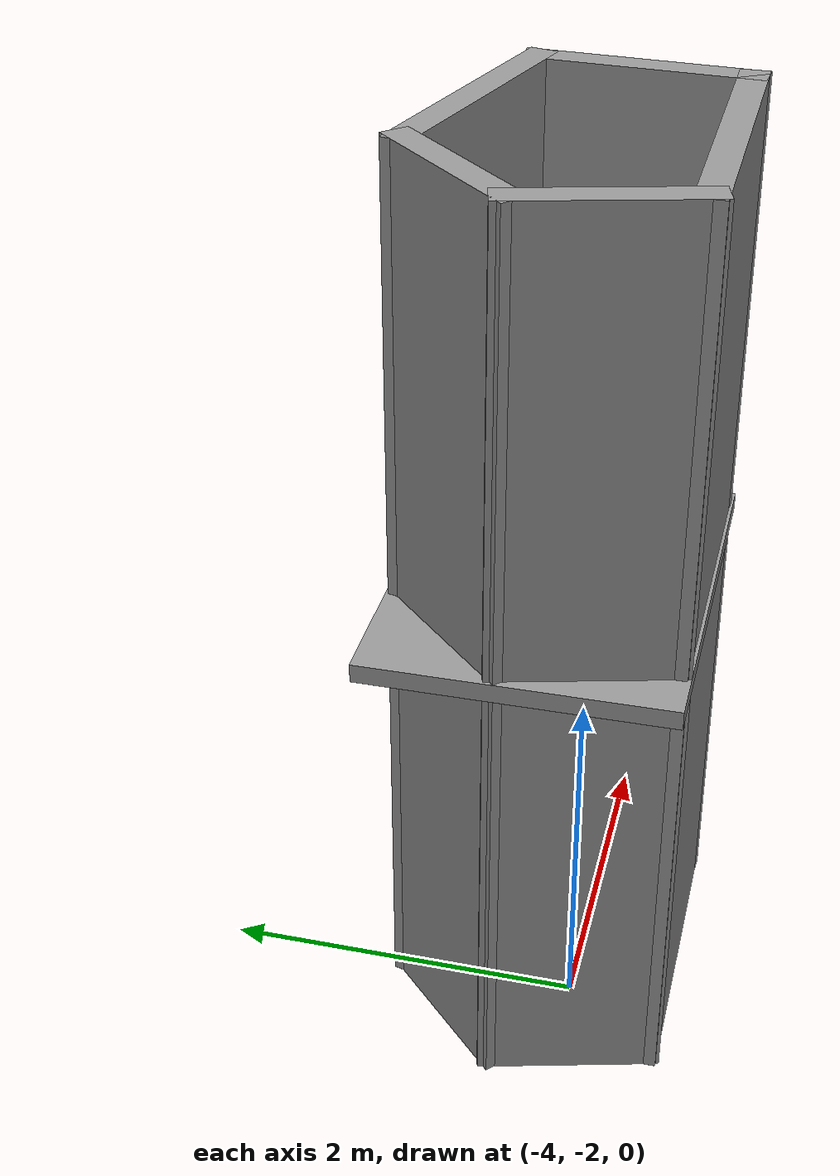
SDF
<?xml version='1.0'?>
<sdf version='1.6'>
  <model name='Untitledt'>
    <pose frame=''>-3.67458 -1.77186 0 0 -0 0</pose>
    <link name='Floor_2'>
      <collision name='Floor_2_Collision'>
        <geometry>
          <box>
            <size>2.10296 1.62 0.1</size>
          </box>
        </geometry>
        <pose frame=''>0 0 0.05 0 -0 0</pose>
      </collision>
      <visual name='Floor_2_Visual'>
        <pose frame=''>0 0 0.05 0 -0 0</pose>
        <geometry>
          <box>
            <size>2.10296 1.62 0.1</size>
          </box>
        </geometry>
        <material>
          <script>
            <uri>file://media/materials/scripts/gazebo.material</uri>
            <name>Gazebo/Grey</name>
          </script>
          <ambient>1 1 1 1</ambient>
        </material>
        <meta>
          <layer>1</layer>
        </meta>
      </visual>
      <pose frame=''>0 0 2.5 0 -0 0</pose>
    </link>
    <link name='Wall_0'>
      <collision name='Wall_0_Collision'>
        <geometry>
          <box>
            <size>1.75 0.15 2.5</size>
          </box>
        </geometry>
        <pose frame=''>0 0 1.25 0 -0 0</pose>
      </collision>
      <visual name='Wall_0_Visual'>
        <pose frame=''>0 0 1.25 0 -0 0</pose>
        <geometry>
          <box>
            <size>1.75 0.15 2.5</size>
          </box>
        </geometry>
        <material>
          <script>
            <uri>file://media/materials/scripts/gazebo.material</uri>
            <name>Gazebo/Grey</name>
          </script>
          <ambient>1 1 1 1</ambient>
        </material>
        <meta>
          <layer>0</layer>
        </meta>
      </visual>
      <pose frame=''>0.074581 -0.718144 0 0 -0 3.14159</pose>
    </link>
    <link name='Wall_1'>
      <collision name='Wall_1_Collision'>
        <geometry>
          <box>
            <size>1 0.15 2.5</size>
          </box>
        </geometry>
        <pose frame=''>0 0 1.25 0 -0 0</pose>
      </collision>
      <visual name='Wall_1_Visual'>
        <pose frame=''>0 0 1.25 0 -0 0</pose>
        <geometry>
          <box>
            <size>1 0.15 2.5</size>
          </box>
        </geometry>
        <material>
          <script>
            <uri>file://media/materials/scripts/gazebo.material</uri>
            <name>Gazebo/Grey</name>
          </script>
          <ambient>1 1 1 1</ambient>
        </material>
        <meta>
          <layer>0</layer>
        </meta>
      </visual>
      <pose frame=''>-0.835417 -0.307626 0 0 -0 1.8326</pose>
    </link>
    <link name='Wall_16'>
      <collision name='Wall_16_Collision'>
        <geometry>
          <box>
            <size>1.75 0.15 2.5</size>
          </box>
        </geometry>
        <pose frame=''>0 0 1.25 0 -0 0</pose>
      </collision>
      <visual name='Wall_16_Visual'>
        <pose frame=''>0 0 1.25 0 -0 0</pose>
        <geometry>
          <box>
            <size>1.75 0.15 2.5</size>
          </box>
        </geometry>
        <material>
          <script>
            <uri>file://media/materials/scripts/gazebo.material</uri>
            <name>Gazebo/Grey</name>
          </script>
          <ambient>1 1 1 1</ambient>
        </material>
        <meta>
          <layer>1</layer>
        </meta>
      </visual>
      <pose frame=''>0.074581 -0.718144 2.5 0 -0 3.14159</pose>
    </link>
    <link name='Wall_17'>
      <collision name='Wall_17_Collision'>
        <geometry>
          <box>
            <size>1 0.15 2.5</size>
          </box>
        </geometry>
        <pose frame=''>0 0 1.25 0 -0 0</pose>
      </collision>
      <visual name='Wall_17_Visual'>
        <pose frame=''>0 0 1.25 0 -0 0</pose>
        <geometry>
          <box>
            <size>1 0.15 2.5</size>
          </box>
        </geometry>
        <material>
          <script>
            <uri>file://media/materials/scripts/gazebo.material</uri>
            <name>Gazebo/Grey</name>
          </script>
          <ambient>1 1 1 1</ambient>
        </material>
        <meta>
          <layer>1</layer>
        </meta>
      </visual>
      <pose frame=''>-0.835417 -0.307626 2.5 0 -0 1.8326</pose>
    </link>
    <link name='Wall_18'>
      <collision name='Wall_18_Collision'>
        <geometry>
          <box>
            <size>1 0.15 2.5</size>
          </box>
        </geometry>
        <pose frame=''>0 0 1.25 0 -0 0</pose>
      </collision>
      <visual name='Wall_18_Visual'>
        <pose frame=''>0 0 1.25 0 -0 0</pose>
        <geometry>
          <box>
            <size>1 0.15 2.5</size>
          </box>
        </geometry>
        <material>
          <script>
            <uri>file://media/materials/scripts/gazebo.material</uri>
            <name>Gazebo/Grey</name>
          </script>
          <ambient>1 1 1 1</ambient>
        </material>
        <meta>
          <layer>1</layer>
        </meta>
      </visual>
      <pose frame=''>-0.644895 0.403413 2.5 0 -0 0.785398</pose>
    </link>
    <link name='Wall_19'>
      <collision name='Wall_19_Collision'>
        <geometry>
          <box>
            <size>1.5 0.15 2.5</size>
          </box>
        </geometry>
        <pose frame=''>0 0 1.25 0 -0 0</pose>
      </collision>
      <visual name='Wall_19_Visual'>
        <pose frame=''>0 0 1.25 0 -0 0</pose>
        <geometry>
          <box>
            <size>1.5 0.15 2.5</size>
          </box>
        </geometry>
        <material>
          <script>
            <uri>file://media/materials/scripts/gazebo.material</uri>
            <name>Gazebo/Grey</name>
          </script>
          <ambient>1 1 1 1</ambient>
        </material>
        <meta>
          <layer>1</layer>
        </meta>
      </visual>
      <pose frame=''>0.307626 0.529231 2.5 0 -0 -0.261799</pose>
    </link>
    <link name='Wall_2'>
      <collision name='Wall_2_Collision'>
        <geometry>
          <box>
            <size>1 0.15 2.5</size>
          </box>
        </geometry>
        <pose frame=''>0 0 1.25 0 -0 0</pose>
      </collision>
      <visual name='Wall_2_Visual'>
        <pose frame=''>0 0 1.25 0 -0 0</pose>
        <geometry>
          <box>
            <size>1 0.15 2.5</size>
          </box>
        </geometry>
        <material>
          <script>
            <uri>file://media/materials/scripts/gazebo.material</uri>
            <name>Gazebo/Grey</name>
          </script>
          <ambient>1 1 1 1</ambient>
        </material>
        <meta>
          <layer>0</layer>
        </meta>
      </visual>
      <pose frame=''>-0.644895 0.403413 0 0 -0 0.785398</pose>
    </link>
    <link name='Wall_20'>
      <collision name='Wall_20_Collision'>
        <geometry>
          <box>
            <size>1.22604 0.15 2.5</size>
          </box>
        </geometry>
        <pose frame=''>0 0 1.25 0 -0 0</pose>
      </collision>
      <visual name='Wall_20_Visual'>
        <pose frame=''>0 0 1.25 0 -0 0</pose>
        <geometry>
          <box>
            <size>1.22604 0.15 2.5</size>
          </box>
        </geometry>
        <material>
          <script>
            <uri>file://media/materials/scripts/gazebo.material</uri>
            <name>Gazebo/Grey</name>
          </script>
          <ambient>1 1 1 1</ambient>
        </material>
        <meta>
          <layer>1</layer>
        </meta>
      </visual>
      <pose frame=''>0.917103 -0.181808 2.5 0 -0 -1.64991</pose>
    </link>
    <link name='Wall_3'>
      <collision name='Wall_3_Collision'>
        <geometry>
          <box>
            <size>1.5 0.15 2.5</size>
          </box>
        </geometry>
        <pose frame=''>0 0 1.25 0 -0 0</pose>
      </collision>
      <visual name='Wall_3_Visual'>
        <pose frame=''>0 0 1.25 0 -0 0</pose>
        <geometry>
          <box>
            <size>1.5 0.15 2.5</size>
          </box>
        </geometry>
        <material>
          <script>
            <uri>file://media/materials/scripts/gazebo.material</uri>
            <name>Gazebo/Grey</name>
          </script>
          <ambient>1 1 1 1</ambient>
        </material>
        <meta>
          <layer>0</layer>
        </meta>
      </visual>
      <pose frame=''>0.307626 0.529231 0 0 -0 -0.261799</pose>
    </link>
    <link name='Wall_4'>
      <collision name='Wall_4_Collision'>
        <geometry>
          <box>
            <size>1.22604 0.15 2.5</size>
          </box>
        </geometry>
        <pose frame=''>0 0 1.25 0 -0 0</pose>
      </collision>
      <visual name='Wall_4_Visual'>
        <pose frame=''>0 0 1.25 0 -0 0</pose>
        <geometry>
          <box>
            <size>1.22604 0.15 2.5</size>
          </box>
        </geometry>
        <material>
          <script>
            <uri>file://media/materials/scripts/gazebo.material</uri>
            <name>Gazebo/Grey</name>
          </script>
          <ambient>1 1 1 1</ambient>
        </material>
        <meta>
          <layer>0</layer>
        </meta>
      </visual>
      <pose frame=''>0.917103 -0.181808 0 0 -0 -1.64991</pose>
    </link>
    <static>1</static>
  </model>
</sdf>
